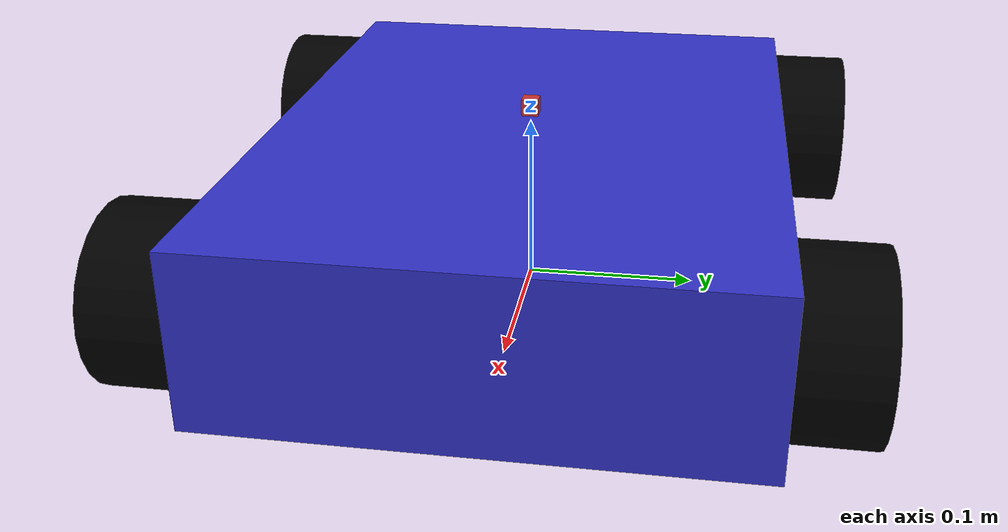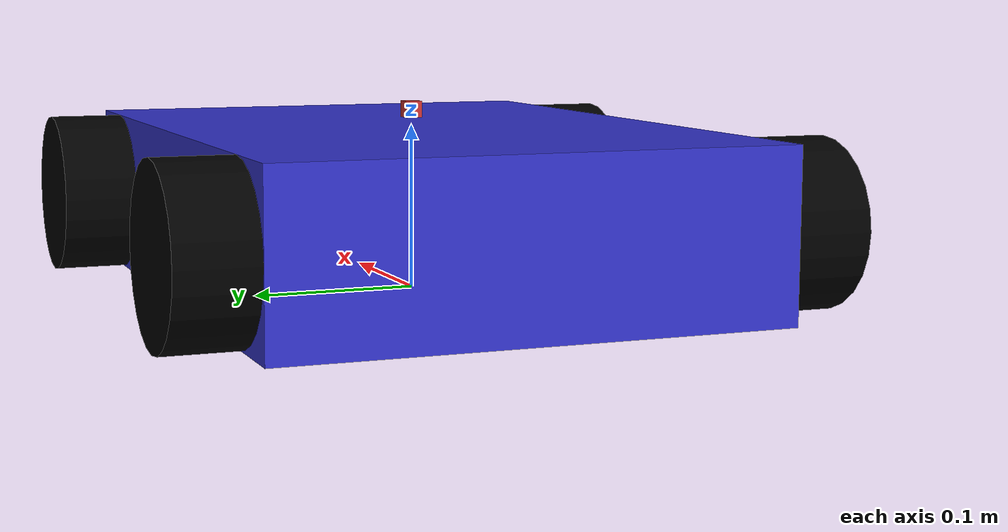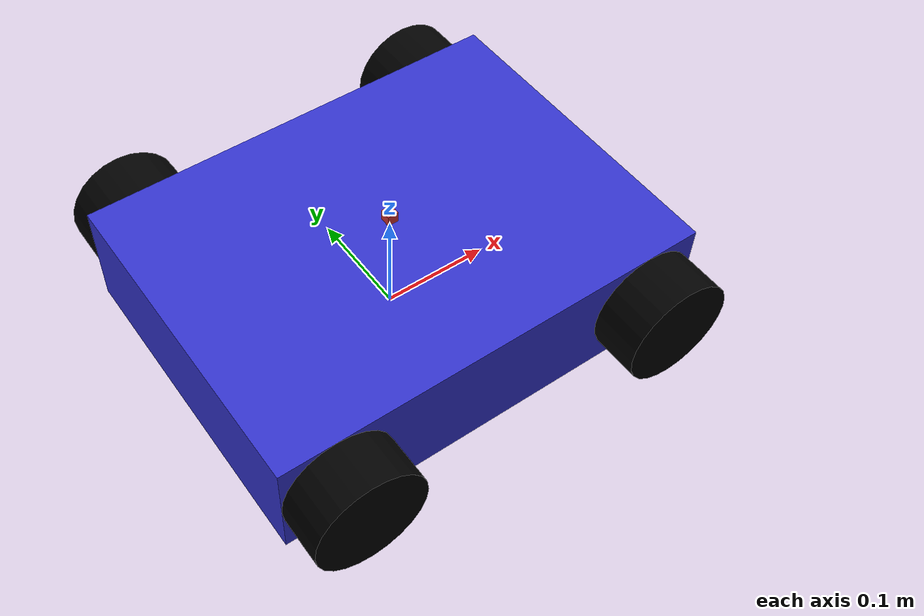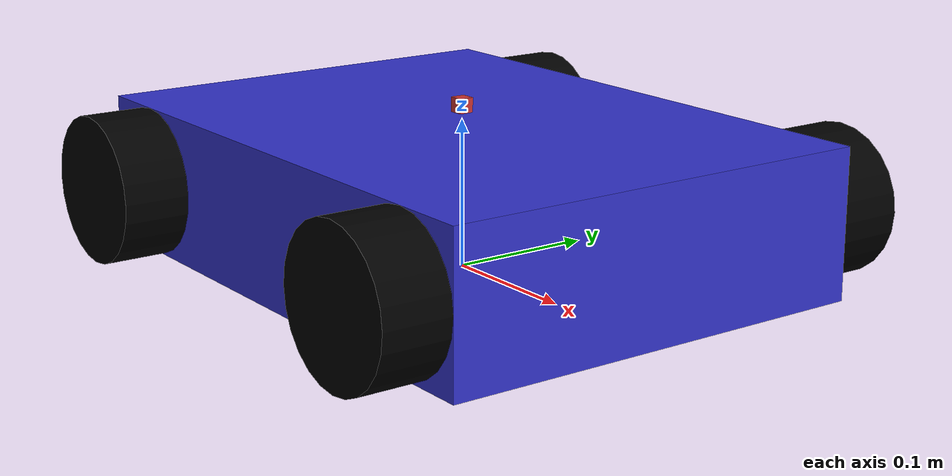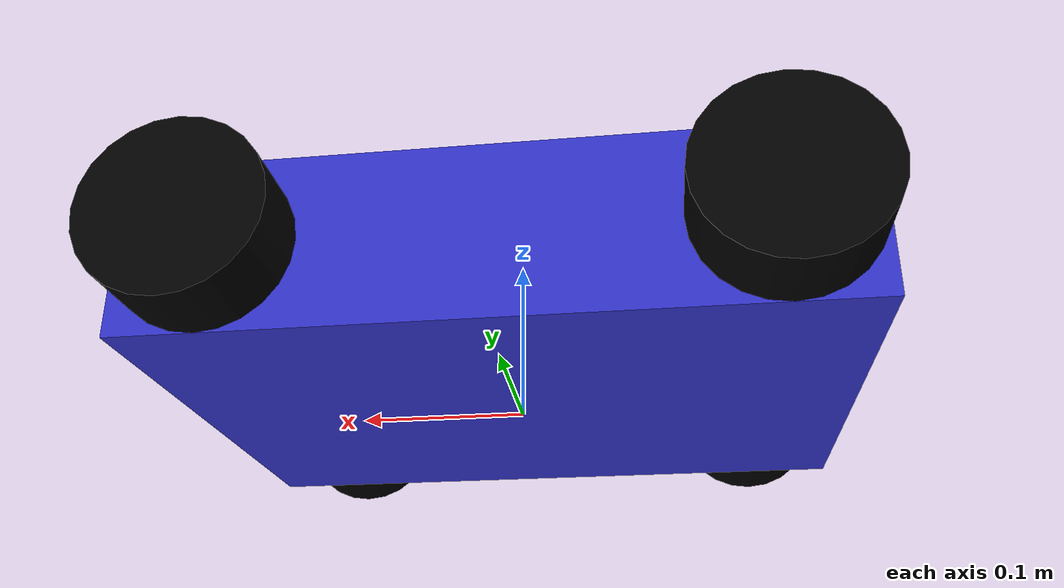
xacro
<?xml version="1.0"?>
<robot xmlns:xacro="http://ros.org/wiki/xacro" name="joy2">

  <!-- Launch/Simulation Args                                            -->
  <xacro:arg name="drive_type" default="mecanum"/>
  <xacro:arg name="use_sim" default="true"/>

  <!-- 1. PROPERTIES / CONSTANTS                                         -->

  <xacro:property name="M_PI" value="3.14159265359"/>

  <!-- Chassis Dimensions -->
  <xacro:property name="CHASSIS_LENGTH" value="0.4"/> <!-- 40 cm -->
  <xacro:property name="CHASSIS_WIDTH" value="0.3"/>  <!-- 30 cm -->
  <xacro:property name="CHASSIS_HEIGHT" value="0.1"/> <!-- 10 cm -->
  <xacro:property name="CHASSIS_MASS" value="5.0"/>

  <!-- IMU Placement -->
  <xacro:property name="IMU_Z_OFFSET" value="0.11"/> <!-- Slightly above the chassis top -->

  <!-- MATERIALS (Visualization Colors)                                  -->

  <material name="black">
    <color rgba="0.0 0.0 0.0 1.0"/>
  </material>

  <material name="blue">
    <color rgba="0.2 0.2 0.8 1.0"/>
  </material>

  <material name="red">
    <color rgba="0.8 0.2 0.2 1.0"/>
  </material>

  <!-- INERTIA MACRO (Helper for Link Inertia)                           -->

  <xacro:macro name="default_inertial" params="mass ixx iyy izz">
    <inertial>
      <mass value="${mass}"/>
      <inertia ixx="${ixx}" ixy="0.0" ixz="0.0"
               iyy="${iyy}" iyz="0.0" izz="${izz}"/>
    </inertial>
  </xacro:macro>

  <!-- INCLUDE WHEEL SETUPS                                              -->

  <xacro:include filename="$(find joy2_description)/urdf/wheels_mecanum.xacro"/>
  <xacro:include filename="$(find joy2_description)/urdf/wheels_diff.xacro"/>

  <!-- BASE LINK (Chassis)                                               -->

  <link name="base_link">
    <visual>
      <origin xyz="0 0 ${CHASSIS_HEIGHT / 2}" rpy="0 0 0"/>
      <geometry>
        <box size="${CHASSIS_LENGTH} ${CHASSIS_WIDTH} ${CHASSIS_HEIGHT}"/>
      </geometry>
      <material name="blue"/>
    </visual>
    <collision>
      <origin xyz="0 0 ${CHASSIS_HEIGHT / 2}" rpy="0 0 0"/>
      <geometry>
        <box size="${CHASSIS_LENGTH} ${CHASSIS_WIDTH} ${CHASSIS_HEIGHT}"/>
      </geometry>
    </collision>
    <xacro:default_inertial mass="${CHASSIS_MASS}" ixx="0.1" iyy="0.1" izz="0.1"/>
  </link>

  <!-- CONDITIONAL WHEEL SETUP                                           -->

  <xacro:joy2_mecanum_wheels/>

  <!-- SENSOR DEFINITION (IMU)                                           -->

  <link name="imu_link">
    <visual>
      <origin xyz="0 0 0" rpy="0 0 0"/>
      <geometry>
        <box size="0.01 0.01 0.01"/>
      </geometry>
      <material name="red"/>
    </visual>
    <collision>
      <origin xyz="0 0 0" rpy="0 0 0"/>
      <geometry>
        <box size="0.01 0.01 0.01"/>
      </geometry>
    </collision>
    <xacro:default_inertial mass="0.01" ixx="1e-6" iyy="1e-6" izz="1e-6"/>

    <!-- Only include Gazebo IMU plugin in simulation -->
      <gazebo>
        <plugin name="imu_plugin" filename="libgazebo_ros_imu_sensor.so">
          <ros>
            <namespace>/</namespace>
            <remapping>~/out:=/imu/data</remapping>
          </ros>
          <update_rate>50.0</update_rate>
          <imu>
            <topicName>imu</topicName>
            <frameName>imu_link</frameName>
            <linear_accel_noise>0.0</linear_accel_noise>
            <angular_vel_noise>0.0</angular_vel_noise>
          </imu>
        </plugin>
      </gazebo>
  </link>

  <joint name="imu_joint" type="fixed">
    <parent link="base_link"/>
    <child link="imu_link"/>
    <origin xyz="0 0 ${IMU_Z_OFFSET}" rpy="0 0 0"/>
  </joint>

  <!-- ROS2 Control Configuration -->
  <ros2_control name="GazeboSystem" type="system">
    <hardware>
      <plugin>gz_ros2_control/GazeboSimSystem</plugin>
    </hardware>
    <joint name="wheel_front_left_joint">
      <command_interface name="velocity"/>
      <state_interface name="velocity"/>
      <state_interface name="position"/>
    </joint>
    <joint name="wheel_front_right_joint">
      <command_interface name="velocity"/>
      <state_interface name="velocity"/>
      <state_interface name="position"/>
    </joint>
    <joint name="wheel_rear_left_joint">
      <command_interface name="velocity"/>
      <state_interface name="velocity"/>
      <state_interface name="position"/>
    </joint>
    <joint name="wheel_rear_right_joint">
      <command_interface name="velocity"/>
      <state_interface name="velocity"/>
      <state_interface name="position"/>
    </joint>
  </ros2_control>

  <!-- Gazebo Plugin for ROS2 Control -->
  <gazebo>
    <plugin filename="gz_ros2_control-system" name="gz_ros2_control::GazeboSimROS2ControlPlugin">
      <parameters>$(find joy2_control)/config/mecanum_controller.yaml</parameters>
    </plugin>
  </gazebo>

</robot>

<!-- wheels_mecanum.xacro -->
<robot xmlns:xacro="http://www.ros.org/wiki/xacro">

<xacro:macro name="joy2_mecanum_wheels">
  <xacro:property name="MEC_WHEEL_RADIUS" value="0.05"/>
  <xacro:property name="MEC_WHEEL_WIDTH" value="0.05"/>
  <xacro:property name="MEC_WHEEL_MASS" value="0.06"/>
  <xacro:property name="MEC_WHEEL_X_OFFSET" value="0.15"/>
  <xacro:property name="MEC_WHEEL_Y_OFFSET" value="0.17"/>

  <!-- Front Left Wheel -->
  <link name="wheel_front_left_link">
    <visual>
      <origin xyz="0 0 0" rpy="${M_PI/2} 0 0"/>
      <geometry>
        <cylinder radius="${MEC_WHEEL_RADIUS}" length="${MEC_WHEEL_WIDTH}"/>
      </geometry>
      <material name="black"/>
    </visual>
    <collision>
      <origin xyz="0 0 0" rpy="${M_PI/2} 0 0"/>
      <geometry>
        <cylinder radius="${MEC_WHEEL_RADIUS}" length="${MEC_WHEEL_WIDTH}"/>
      </geometry>
    </collision>
    <xacro:default_inertial
      mass="${MEC_WHEEL_MASS}"
      ixx="${(MEC_WHEEL_MASS/12.0) * (3*MEC_WHEEL_RADIUS*MEC_WHEEL_RADIUS + MEC_WHEEL_WIDTH*MEC_WHEEL_WIDTH)}"
      iyy="${(MEC_WHEEL_MASS/2.0) * (MEC_WHEEL_RADIUS*MEC_WHEEL_RADIUS)}"
      izz="${(MEC_WHEEL_MASS/12.0) * (3*MEC_WHEEL_RADIUS*MEC_WHEEL_RADIUS + MEC_WHEEL_WIDTH*MEC_WHEEL_WIDTH)}"/>
  </link>
  <joint name="wheel_front_left_joint" type="continuous">
    <parent link="base_link"/>
    <child link="wheel_front_left_link"/>
    <origin xyz="${MEC_WHEEL_X_OFFSET} ${MEC_WHEEL_Y_OFFSET} ${MEC_WHEEL_RADIUS}" rpy="0 0 0"/>
    <axis xyz="0 1 0"/>
  </joint>
  <transmission name="wheel_front_left_transmission">
    <type>transmission_interface/SimpleTransmission</type>
    <joint name="wheel_front_left_joint">
      <hardwareInterface>velocity</hardwareInterface>
    </joint>
    <actuator name="wheel_front_left_motor">
      <mechanicalReduction>1</mechanicalReduction>
    </actuator>
  </transmission>

  <!-- Front Right Wheel -->
  <link name="wheel_front_right_link">
    <visual>
      <origin xyz="0 0 0" rpy="${M_PI/2} 0 0"/>
      <geometry>
        <cylinder radius="${MEC_WHEEL_RADIUS}" length="${MEC_WHEEL_WIDTH}"/>
      </geometry>
      <material name="black"/>
    </visual>
    <collision>
      <origin xyz="0 0 0" rpy="${M_PI/2} 0 0"/>
      <geometry>
        <cylinder radius="${MEC_WHEEL_RADIUS}" length="${MEC_WHEEL_WIDTH}"/>
      </geometry>
    </collision>
    <xacro:default_inertial
      mass="${MEC_WHEEL_MASS}"
      ixx="${(MEC_WHEEL_MASS/12.0) * (3*MEC_WHEEL_RADIUS*MEC_WHEEL_RADIUS + MEC_WHEEL_WIDTH*MEC_WHEEL_WIDTH)}"
      iyy="${(MEC_WHEEL_MASS/2.0) * (MEC_WHEEL_RADIUS*MEC_WHEEL_RADIUS)}"
      izz="${(MEC_WHEEL_MASS/12.0) * (3*MEC_WHEEL_RADIUS*MEC_WHEEL_RADIUS + MEC_WHEEL_WIDTH*MEC_WHEEL_WIDTH)}"/>
  </link>
  <joint name="wheel_front_right_joint" type="continuous">
    <parent link="base_link"/>
    <child link="wheel_front_right_link"/>
    <origin xyz="${MEC_WHEEL_X_OFFSET} ${-MEC_WHEEL_Y_OFFSET} ${MEC_WHEEL_RADIUS}" rpy="0 0 0"/>
    <axis xyz="0 1 0"/>
  </joint>
  <transmission name="wheel_front_right_transmission">
    <type>transmission_interface/SimpleTransmission</type>
    <joint name="wheel_front_right_joint">
      <hardwareInterface>velocity</hardwareInterface>
    </joint>
    <actuator name="wheel_front_right_motor">
      <mechanicalReduction>1</mechanicalReduction>
    </actuator>
  </transmission>

  <!-- Rear Left Wheel -->
  <link name="wheel_rear_left_link">
    <visual>
      <origin xyz="0 0 0" rpy="${M_PI/2} 0 0"/>
      <geometry>
        <cylinder radius="${MEC_WHEEL_RADIUS}" length="${MEC_WHEEL_WIDTH}"/>
      </geometry>
      <material name="black"/>
    </visual>
    <collision>
      <origin xyz="0 0 0" rpy="${M_PI/2} 0 0"/>
      <geometry>
        <cylinder radius="${MEC_WHEEL_RADIUS}" length="${MEC_WHEEL_WIDTH}"/>
      </geometry>
    </collision>
    <xacro:default_inertial
      mass="${MEC_WHEEL_MASS}"
      ixx="${(MEC_WHEEL_MASS/12.0) * (3*MEC_WHEEL_RADIUS*MEC_WHEEL_RADIUS + MEC_WHEEL_WIDTH*MEC_WHEEL_WIDTH)}"
      iyy="${(MEC_WHEEL_MASS/2.0) * (MEC_WHEEL_RADIUS*MEC_WHEEL_RADIUS)}"
      izz="${(MEC_WHEEL_MASS/12.0) * (3*MEC_WHEEL_RADIUS*MEC_WHEEL_RADIUS + MEC_WHEEL_WIDTH*MEC_WHEEL_WIDTH)}"/>
  </link>
  <joint name="wheel_rear_left_joint" type="continuous">
    <parent link="base_link"/>
    <child link="wheel_rear_left_link"/>
    <origin xyz="${-MEC_WHEEL_X_OFFSET} ${MEC_WHEEL_Y_OFFSET} ${MEC_WHEEL_RADIUS}" rpy="0 0 0"/>
    <axis xyz="0 1 0"/>
  </joint>
  <transmission name="wheel_rear_left_transmission">
    <type>transmission_interface/SimpleTransmission</type>
    <joint name="wheel_rear_left_joint">
      <hardwareInterface>velocity</hardwareInterface>
    </joint>
    <actuator name="wheel_rear_left_motor">
      <mechanicalReduction>1</mechanicalReduction>
    </actuator>
  </transmission>

  <!-- Rear Right Wheel -->
  <link name="wheel_rear_right_link">
    <visual>
      <origin xyz="0 0 0" rpy="${M_PI/2} 0 0"/>
      <geometry>
        <cylinder radius="${MEC_WHEEL_RADIUS}" length="${MEC_WHEEL_WIDTH}"/>
      </geometry>
      <material name="black"/>
    </visual>
    <collision>
      <origin xyz="0 0 0" rpy="${M_PI/2} 0 0"/>
      <geometry>
        <cylinder radius="${MEC_WHEEL_RADIUS}" length="${MEC_WHEEL_WIDTH}"/>
      </geometry>
    </collision>
    <xacro:default_inertial
      mass="${MEC_WHEEL_MASS}"
      ixx="${(MEC_WHEEL_MASS/12.0) * (3*MEC_WHEEL_RADIUS*MEC_WHEEL_RADIUS + MEC_WHEEL_WIDTH*MEC_WHEEL_WIDTH)}"
      iyy="${(MEC_WHEEL_MASS/2.0) * (MEC_WHEEL_RADIUS*MEC_WHEEL_RADIUS)}"
      izz="${(MEC_WHEEL_MASS/12.0) * (3*MEC_WHEEL_RADIUS*MEC_WHEEL_RADIUS + MEC_WHEEL_WIDTH*MEC_WHEEL_WIDTH)}"/>
  </link>
  <joint name="wheel_rear_right_joint" type="continuous">
    <parent link="base_link"/>
    <child link="wheel_rear_right_link"/>
    <origin xyz="${-MEC_WHEEL_X_OFFSET} ${-MEC_WHEEL_Y_OFFSET} ${MEC_WHEEL_RADIUS}" rpy="0 0 0"/>
    <axis xyz="0 1 0"/>
  </joint>
  <transmission name="wheel_rear_right_transmission">
    <type>transmission_interface/SimpleTransmission</type>
    <joint name="wheel_rear_right_joint">
      <hardwareInterface>velocity</hardwareInterface>
    </joint>
    <actuator name="wheel_rear_right_motor">
      <mechanicalReduction>1</mechanicalReduction>
    </actuator>
  </transmission>

</xacro:macro>

</robot>
